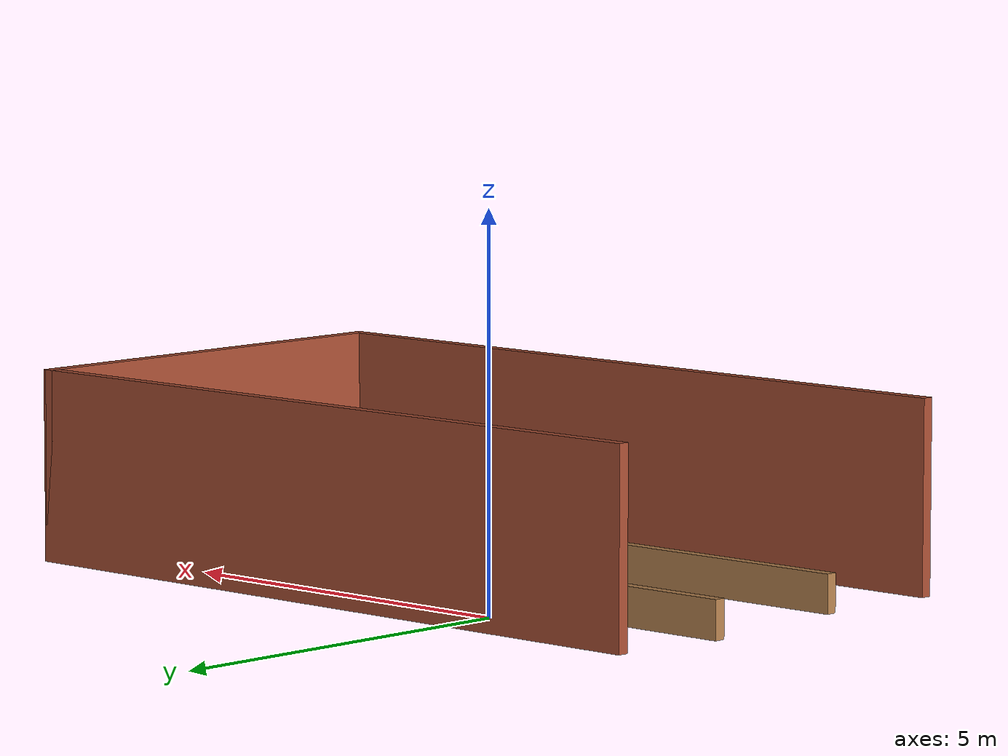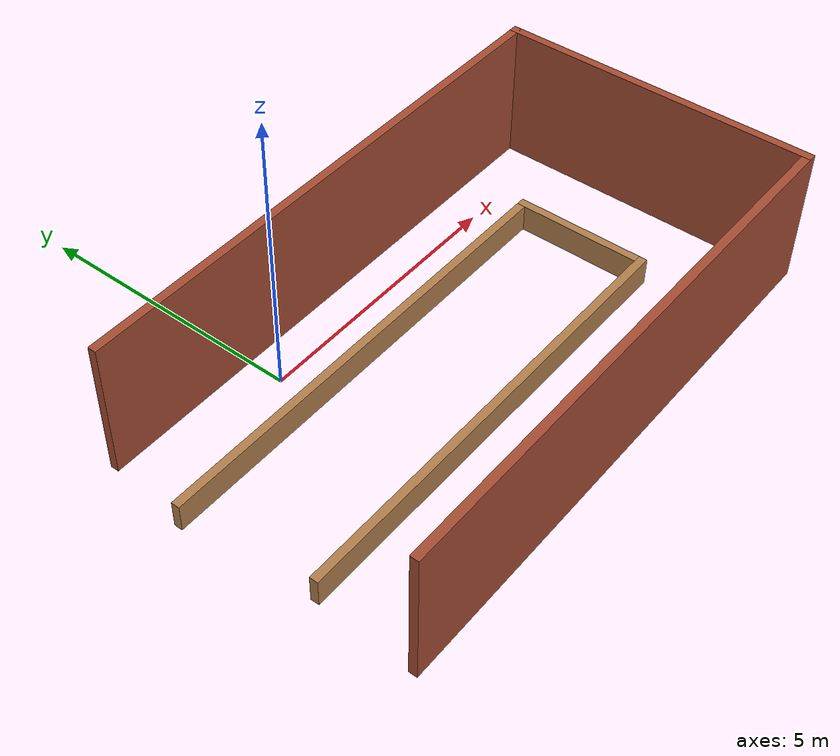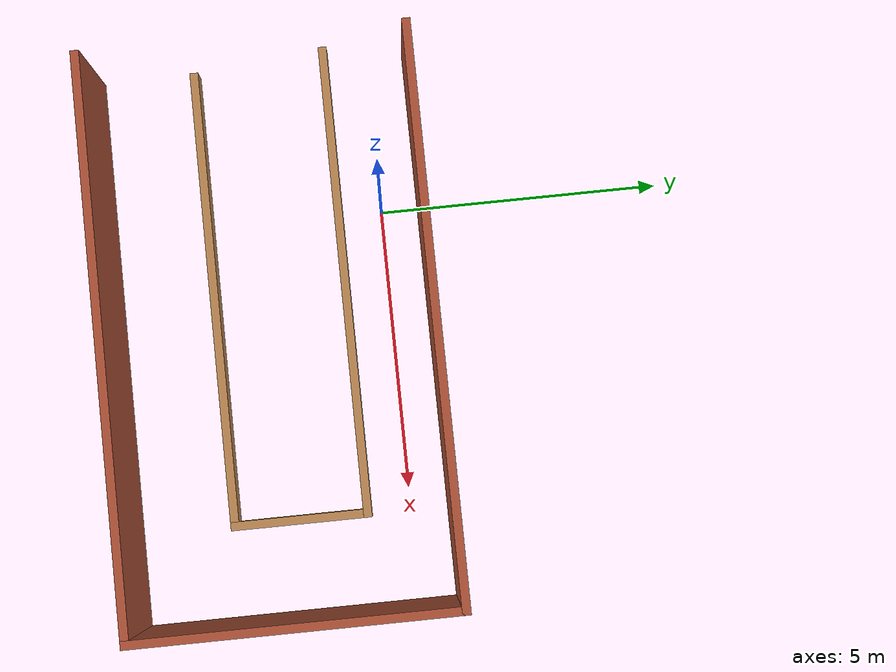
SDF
<?xml version='1.0'?>
<sdf version='1.7'>
  <model name='walls'>
    <pose>2.04509 -2.07445 0 0 -0 0</pose>
    <link name='Wall_0'>
      <collision name='Wall_0_Collision'>
        <geometry>
          <box>
            <size>10 0.15 2.5</size>
          </box>
        </geometry>
        <pose>0 0 1.25 0 -0 0</pose>
      </collision>
      <visual name='Wall_0_Visual'>
        <pose>0 0 1.25 0 -0 0</pose>
        <geometry>
          <box>
            <size>10 0.15 2.5</size>
          </box>
        </geometry>
        <material>
          <script>
            <uri>file://media/materials/scripts/gazebo.material</uri>
            <name>Gazebo/Bricks</name>
          </script>
          <ambient>1 1 1 1</ambient>
        </material>
        <meta>
          <layer>0</layer>
        </meta>
      </visual>
      <pose>0.095089 2.8 0 0 -0 0</pose>
    </link>
    <link name='Wall_2'>
      <collision name='Wall_2_Collision'>
        <geometry>
          <box>
            <size>5.75 0.15 2.5</size>
          </box>
        </geometry>
        <pose>0 0 1.25 0 -0 0</pose>
      </collision>
      <visual name='Wall_2_Visual'>
        <pose>0 0 1.25 0 -0 0</pose>
        <geometry>
          <box>
            <size>5.75 0.15 2.5</size>
          </box>
        </geometry>
        <material>
          <script>
            <uri>file://media/materials/scripts/gazebo.material</uri>
            <name>Gazebo/Bricks</name>
          </script>
          <ambient>1 1 1 1</ambient>
        </material>
        <meta>
          <layer>0</layer>
        </meta>
      </visual>
      <pose>5.02009 0 0 0 -0 -1.5708</pose>
    </link>
    <link name='Wall_3'>
      <collision name='Wall_3_Collision'>
        <geometry>
          <box>
            <size>10 0.15 2.5</size>
          </box>
        </geometry>
        <pose>0 0 1.25 0 -0 0</pose>
      </collision>
      <visual name='Wall_3_Visual'>
        <pose>0 0 1.25 0 -0 0</pose>
        <geometry>
          <box>
            <size>10 0.15 2.5</size>
          </box>
        </geometry>
        <material>
          <script>
            <uri>file://media/materials/scripts/gazebo.material</uri>
            <name>Gazebo/Bricks</name>
          </script>
          <ambient>1 1 1 1</ambient>
        </material>
        <meta>
          <layer>0</layer>
        </meta>
      </visual>
      <pose>0.095089 -2.8 0 0 -0 3.14159</pose>
    </link>
    <link name='Wall_5'>
      <collision name='Wall_5_Collision'>
        <geometry>
          <box>
            <size>8.5 0.15 0.5</size>
          </box>
        </geometry>
        <pose>0 0 0.25 0 -0 0</pose>
      </collision>
      <visual name='Wall_5_Visual'>
        <pose>0 0 0.25 0 -0 0</pose>
        <geometry>
          <box>
            <size>8.5 0.15 0.5</size>
          </box>
        </geometry>
        <material>
          <script>
            <uri>file://media/materials/scripts/gazebo.material</uri>
            <name>Gazebo/Wood</name>
          </script>
          <ambient>1 1 1 1</ambient>
        </material>
        <meta>
          <layer>0</layer>
        </meta>
      </visual>
      <pose>-0.84509 1.30145 0 0 -0 0</pose>
    </link>
    <link name='Wall_7'>
      <collision name='Wall_7_Collision'>
        <geometry>
          <box>
            <size>2.5 0.15 0.5</size>
          </box>
        </geometry>
        <pose>0 0 0.25 0 -0 0</pose>
      </collision>
      <visual name='Wall_7_Visual'>
        <pose>0 0 0.25 0 -0 0</pose>
        <geometry>
          <box>
            <size>2.5 0.15 0.5</size>
          </box>
        </geometry>
        <material>
          <script>
            <uri>file://media/materials/scripts/gazebo.material</uri>
            <name>Gazebo/Wood</name>
          </script>
          <ambient>1 1 1 1</ambient>
        </material>
        <meta>
          <layer>0</layer>
        </meta>
      </visual>
      <pose>3.32991 0.126453 0 0 -0 -1.5708</pose>
    </link>
    <link name='Wall_8'>
      <collision name='Wall_8_Collision'>
        <geometry>
          <box>
            <size>8.25 0.15 0.5</size>
          </box>
        </geometry>
        <pose>0 0 0.25 0 -0 0</pose>
      </collision>
      <visual name='Wall_8_Visual'>
        <pose>0 0 0.25 0 -0 0</pose>
        <geometry>
          <box>
            <size>8.25 0.15 0.5</size>
          </box>
        </geometry>
        <material>
          <script>
            <uri>file://media/materials/scripts/gazebo.material</uri>
            <name>Gazebo/Wood</name>
          </script>
          <ambient>1 1 1 1</ambient>
        </material>
        <meta>
          <layer>0</layer>
        </meta>
      </visual>
      <pose>-0.72009 -1.04855 0 0 -0 3.14159</pose>
    </link>
    <static>1</static>
  </model>
</sdf>
